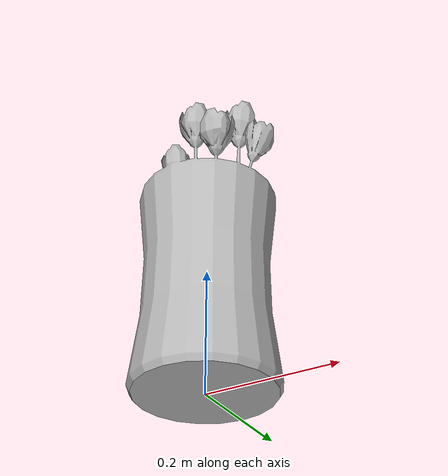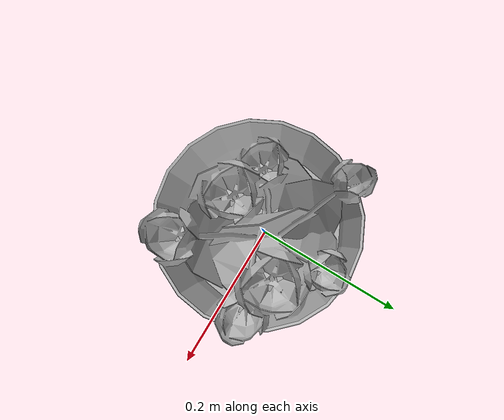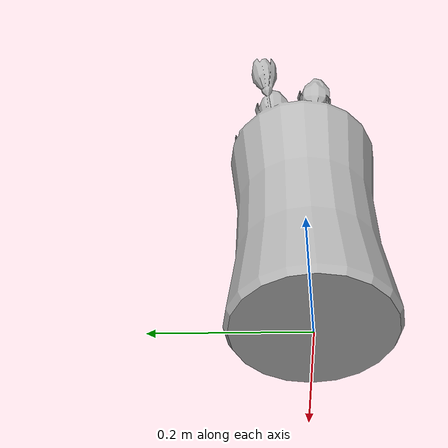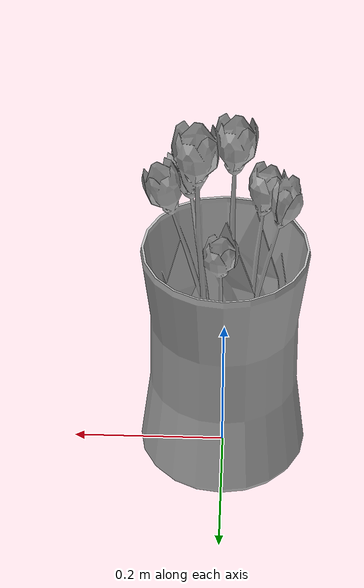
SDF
<?xml version='1.0'?>
<sdf version='1.4'>
  <model name='258'>
    <pose>0 0 0 0 0 0</pose>
    <static>true</static>
    <link name='link'>
      <collision name='collision'>
        <pose>0 0 0 0 0 0</pose>
        <geometry>
          <box>
            <size>0.218804 0.218804 2</size>
          </box>
        </geometry>
      </collision>
      <visual name='visual'>
        <pose>0 0 0 0 0 0</pose>
        <geometry>
          <mesh><uri>model://258/258.dae</uri></mesh>
        </geometry>
      </visual>
    </link>
  </model>
</sdf>
